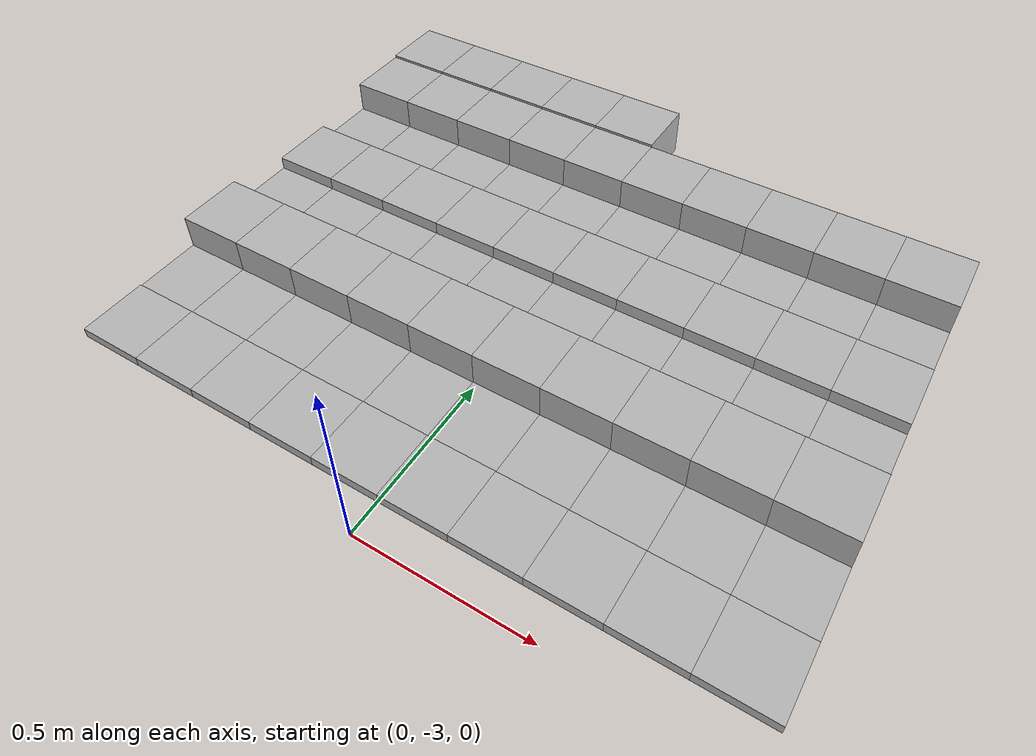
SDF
<sdf version="1.6">
 <model name="Terrain">
  <static>true</static>
  <link name="box_7_0">
   <pose>-0.9 -1.4 0.0735431244106 0 0 0</pose>
   <inertial>
    <mass>1.0</mass>
    <inertia><ixx>0.0</ixx><ixy>0.0</ixy><ixz>0.0</ixz><iyy>0.0</iyy><iyz>0.0</iyz><izz>0.0</izz></inertia>
   </inertial>
   <collision name="collision"><geometry><box><size>0.2 0.2 0.147086248821</size></box></geometry></collision>
   <visual name="visual"><geometry><box><size>0.2 0.2 0.147086248821</size></box></geometry></visual>
  </link>
  <link name="box_7_1">
   <pose>-0.7 -1.4 0.0735431244106 0 0 0</pose>
   <inertial>
    <mass>1.0</mass>
    <inertia><ixx>0.0</ixx><ixy>0.0</ixy><ixz>0.0</ixz><iyy>0.0</iyy><iyz>0.0</iyz><izz>0.0</izz></inertia>
   </inertial>
   <collision name="collision"><geometry><box><size>0.2 0.2 0.147086248821</size></box></geometry></collision>
   <visual name="visual"><geometry><box><size>0.2 0.2 0.147086248821</size></box></geometry></visual>
  </link>
  <link name="box_7_2">
   <pose>-0.5 -1.4 0.0735431244106 0 0 0</pose>
   <inertial>
    <mass>1.0</mass>
    <inertia><ixx>0.0</ixx><ixy>0.0</ixy><ixz>0.0</ixz><iyy>0.0</iyy><iyz>0.0</iyz><izz>0.0</izz></inertia>
   </inertial>
   <collision name="collision"><geometry><box><size>0.2 0.2 0.147086248821</size></box></geometry></collision>
   <visual name="visual"><geometry><box><size>0.2 0.2 0.147086248821</size></box></geometry></visual>
  </link>
  <link name="box_7_3">
   <pose>-0.3 -1.4 0.0735431244106 0 0 0</pose>
   <inertial>
    <mass>1.0</mass>
    <inertia><ixx>0.0</ixx><ixy>0.0</ixy><ixz>0.0</ixz><iyy>0.0</iyy><iyz>0.0</iyz><izz>0.0</izz></inertia>
   </inertial>
   <collision name="collision"><geometry><box><size>0.2 0.2 0.147086248821</size></box></geometry></collision>
   <visual name="visual"><geometry><box><size>0.2 0.2 0.147086248821</size></box></geometry></visual>
  </link>
  <link name="box_7_4">
   <pose>-0.1 -1.4 0.0735431244106 0 0 0</pose>
   <inertial>
    <mass>1.0</mass>
    <inertia><ixx>0.0</ixx><ixy>0.0</ixy><ixz>0.0</ixz><iyy>0.0</iyy><iyz>0.0</iyz><izz>0.0</izz></inertia>
   </inertial>
   <collision name="collision"><geometry><box><size>0.2 0.2 0.147086248821</size></box></geometry></collision>
   <visual name="visual"><geometry><box><size>0.2 0.2 0.147086248821</size></box></geometry></visual>
  </link>
  <link name="box_8_0">
   <pose>-0.9 -1.6 0.0698554975141 0 0 0</pose>
   <inertial>
    <mass>1.0</mass>
    <inertia><ixx>0.0</ixx><ixy>0.0</ixy><ixz>0.0</ixz><iyy>0.0</iyy><iyz>0.0</iyz><izz>0.0</izz></inertia>
   </inertial>
   <collision name="collision"><geometry><box><size>0.2 0.2 0.139710995028</size></box></geometry></collision>
   <visual name="visual"><geometry><box><size>0.2 0.2 0.139710995028</size></box></geometry></visual>
  </link>
  <link name="box_8_1">
   <pose>-0.7 -1.6 0.0698554975141 0 0 0</pose>
   <inertial>
    <mass>1.0</mass>
    <inertia><ixx>0.0</ixx><ixy>0.0</ixy><ixz>0.0</ixz><iyy>0.0</iyy><iyz>0.0</iyz><izz>0.0</izz></inertia>
   </inertial>
   <collision name="collision"><geometry><box><size>0.2 0.2 0.139710995028</size></box></geometry></collision>
   <visual name="visual"><geometry><box><size>0.2 0.2 0.139710995028</size></box></geometry></visual>
  </link>
  <link name="box_8_2">
   <pose>-0.5 -1.6 0.0698554975141 0 0 0</pose>
   <inertial>
    <mass>1.0</mass>
    <inertia><ixx>0.0</ixx><ixy>0.0</ixy><ixz>0.0</ixz><iyy>0.0</iyy><iyz>0.0</iyz><izz>0.0</izz></inertia>
   </inertial>
   <collision name="collision"><geometry><box><size>0.2 0.2 0.139710995028</size></box></geometry></collision>
   <visual name="visual"><geometry><box><size>0.2 0.2 0.139710995028</size></box></geometry></visual>
  </link>
  <link name="box_8_3">
   <pose>-0.3 -1.6 0.0698554975141 0 0 0</pose>
   <inertial>
    <mass>1.0</mass>
    <inertia><ixx>0.0</ixx><ixy>0.0</ixy><ixz>0.0</ixz><iyy>0.0</iyy><iyz>0.0</iyz><izz>0.0</izz></inertia>
   </inertial>
   <collision name="collision"><geometry><box><size>0.2 0.2 0.139710995028</size></box></geometry></collision>
   <visual name="visual"><geometry><box><size>0.2 0.2 0.139710995028</size></box></geometry></visual>
  </link>
  <link name="box_8_4">
   <pose>-0.1 -1.6 0.0698554975141 0 0 0</pose>
   <inertial>
    <mass>1.0</mass>
    <inertia><ixx>0.0</ixx><ixy>0.0</ixy><ixz>0.0</ixz><iyy>0.0</iyy><iyz>0.0</iyz><izz>0.0</izz></inertia>
   </inertial>
   <collision name="collision"><geometry><box><size>0.2 0.2 0.139710995028</size></box></geometry></collision>
   <visual name="visual"><geometry><box><size>0.2 0.2 0.139710995028</size></box></geometry></visual>
  </link>
  <link name="box_8_5">
   <pose>0.1 -1.6 0.0698554975141 0 0 0</pose>
   <inertial>
    <mass>1.0</mass>
    <inertia><ixx>0.0</ixx><ixy>0.0</ixy><ixz>0.0</ixz><iyy>0.0</iyy><iyz>0.0</iyz><izz>0.0</izz></inertia>
   </inertial>
   <collision name="collision"><geometry><box><size>0.2 0.2 0.139710995028</size></box></geometry></collision>
   <visual name="visual"><geometry><box><size>0.2 0.2 0.139710995028</size></box></geometry></visual>
  </link>
  <link name="box_8_6">
   <pose>0.3 -1.6 0.0698554975141 0 0 0</pose>
   <inertial>
    <mass>1.0</mass>
    <inertia><ixx>0.0</ixx><ixy>0.0</ixy><ixz>0.0</ixz><iyy>0.0</iyy><iyz>0.0</iyz><izz>0.0</izz></inertia>
   </inertial>
   <collision name="collision"><geometry><box><size>0.2 0.2 0.139710995028</size></box></geometry></collision>
   <visual name="visual"><geometry><box><size>0.2 0.2 0.139710995028</size></box></geometry></visual>
  </link>
  <link name="box_8_7">
   <pose>0.5 -1.6 0.0698554975141 0 0 0</pose>
   <inertial>
    <mass>1.0</mass>
    <inertia><ixx>0.0</ixx><ixy>0.0</ixy><ixz>0.0</ixz><iyy>0.0</iyy><iyz>0.0</iyz><izz>0.0</izz></inertia>
   </inertial>
   <collision name="collision"><geometry><box><size>0.2 0.2 0.139710995028</size></box></geometry></collision>
   <visual name="visual"><geometry><box><size>0.2 0.2 0.139710995028</size></box></geometry></visual>
  </link>
  <link name="box_8_8">
   <pose>0.7 -1.6 0.0698554975141 0 0 0</pose>
   <inertial>
    <mass>1.0</mass>
    <inertia><ixx>0.0</ixx><ixy>0.0</ixy><ixz>0.0</ixz><iyy>0.0</iyy><iyz>0.0</iyz><izz>0.0</izz></inertia>
   </inertial>
   <collision name="collision"><geometry><box><size>0.2 0.2 0.139710995028</size></box></geometry></collision>
   <visual name="visual"><geometry><box><size>0.2 0.2 0.139710995028</size></box></geometry></visual>
  </link>
  <link name="box_8_9">
   <pose>0.9 -1.6 0.0698554975141 0 0 0</pose>
   <inertial>
    <mass>1.0</mass>
    <inertia><ixx>0.0</ixx><ixy>0.0</ixy><ixz>0.0</ixz><iyy>0.0</iyy><iyz>0.0</iyz><izz>0.0</izz></inertia>
   </inertial>
   <collision name="collision"><geometry><box><size>0.2 0.2 0.139710995028</size></box></geometry></collision>
   <visual name="visual"><geometry><box><size>0.2 0.2 0.139710995028</size></box></geometry></visual>
  </link>
  <link name="box_9_0">
   <pose>-0.9 -1.8 0.020531923753 0 0 0</pose>
   <inertial>
    <mass>1.0</mass>
    <inertia><ixx>0.0</ixx><ixy>0.0</ixy><ixz>0.0</ixz><iyy>0.0</iyy><iyz>0.0</iyz><izz>0.0</izz></inertia>
   </inertial>
   <collision name="collision"><geometry><box><size>0.2 0.2 0.0410638475061</size></box></geometry></collision>
   <visual name="visual"><geometry><box><size>0.2 0.2 0.0410638475061</size></box></geometry></visual>
  </link>
  <link name="box_9_1">
   <pose>-0.7 -1.8 0.020531923753 0 0 0</pose>
   <inertial>
    <mass>1.0</mass>
    <inertia><ixx>0.0</ixx><ixy>0.0</ixy><ixz>0.0</ixz><iyy>0.0</iyy><iyz>0.0</iyz><izz>0.0</izz></inertia>
   </inertial>
   <collision name="collision"><geometry><box><size>0.2 0.2 0.0410638475061</size></box></geometry></collision>
   <visual name="visual"><geometry><box><size>0.2 0.2 0.0410638475061</size></box></geometry></visual>
  </link>
  <link name="box_9_2">
   <pose>-0.5 -1.8 0.020531923753 0 0 0</pose>
   <inertial>
    <mass>1.0</mass>
    <inertia><ixx>0.0</ixx><ixy>0.0</ixy><ixz>0.0</ixz><iyy>0.0</iyy><iyz>0.0</iyz><izz>0.0</izz></inertia>
   </inertial>
   <collision name="collision"><geometry><box><size>0.2 0.2 0.0410638475061</size></box></geometry></collision>
   <visual name="visual"><geometry><box><size>0.2 0.2 0.0410638475061</size></box></geometry></visual>
  </link>
  <link name="box_9_3">
   <pose>-0.3 -1.8 0.020531923753 0 0 0</pose>
   <inertial>
    <mass>1.0</mass>
    <inertia><ixx>0.0</ixx><ixy>0.0</ixy><ixz>0.0</ixz><iyy>0.0</iyy><iyz>0.0</iyz><izz>0.0</izz></inertia>
   </inertial>
   <collision name="collision"><geometry><box><size>0.2 0.2 0.0410638475061</size></box></geometry></collision>
   <visual name="visual"><geometry><box><size>0.2 0.2 0.0410638475061</size></box></geometry></visual>
  </link>
  <link name="box_9_4">
   <pose>-0.1 -1.8 0.020531923753 0 0 0</pose>
   <inertial>
    <mass>1.0</mass>
    <inertia><ixx>0.0</ixx><ixy>0.0</ixy><ixz>0.0</ixz><iyy>0.0</iyy><iyz>0.0</iyz><izz>0.0</izz></inertia>
   </inertial>
   <collision name="collision"><geometry><box><size>0.2 0.2 0.0410638475061</size></box></geometry></collision>
   <visual name="visual"><geometry><box><size>0.2 0.2 0.0410638475061</size></box></geometry></visual>
  </link>
  <link name="box_9_5">
   <pose>0.1 -1.8 0.020531923753 0 0 0</pose>
   <inertial>
    <mass>1.0</mass>
    <inertia><ixx>0.0</ixx><ixy>0.0</ixy><ixz>0.0</ixz><iyy>0.0</iyy><iyz>0.0</iyz><izz>0.0</izz></inertia>
   </inertial>
   <collision name="collision"><geometry><box><size>0.2 0.2 0.0410638475061</size></box></geometry></collision>
   <visual name="visual"><geometry><box><size>0.2 0.2 0.0410638475061</size></box></geometry></visual>
  </link>
  <link name="box_9_6">
   <pose>0.3 -1.8 0.020531923753 0 0 0</pose>
   <inertial>
    <mass>1.0</mass>
    <inertia><ixx>0.0</ixx><ixy>0.0</ixy><ixz>0.0</ixz><iyy>0.0</iyy><iyz>0.0</iyz><izz>0.0</izz></inertia>
   </inertial>
   <collision name="collision"><geometry><box><size>0.2 0.2 0.0410638475061</size></box></geometry></collision>
   <visual name="visual"><geometry><box><size>0.2 0.2 0.0410638475061</size></box></geometry></visual>
  </link>
  <link name="box_9_7">
   <pose>0.5 -1.8 0.020531923753 0 0 0</pose>
   <inertial>
    <mass>1.0</mass>
    <inertia><ixx>0.0</ixx><ixy>0.0</ixy><ixz>0.0</ixz><iyy>0.0</iyy><iyz>0.0</iyz><izz>0.0</izz></inertia>
   </inertial>
   <collision name="collision"><geometry><box><size>0.2 0.2 0.0410638475061</size></box></geometry></collision>
   <visual name="visual"><geometry><box><size>0.2 0.2 0.0410638475061</size></box></geometry></visual>
  </link>
  <link name="box_9_8">
   <pose>0.7 -1.8 0.020531923753 0 0 0</pose>
   <inertial>
    <mass>1.0</mass>
    <inertia><ixx>0.0</ixx><ixy>0.0</ixy><ixz>0.0</ixz><iyy>0.0</iyy><iyz>0.0</iyz><izz>0.0</izz></inertia>
   </inertial>
   <collision name="collision"><geometry><box><size>0.2 0.2 0.0410638475061</size></box></geometry></collision>
   <visual name="visual"><geometry><box><size>0.2 0.2 0.0410638475061</size></box></geometry></visual>
  </link>
  <link name="box_9_9">
   <pose>0.9 -1.8 0.020531923753 0 0 0</pose>
   <inertial>
    <mass>1.0</mass>
    <inertia><ixx>0.0</ixx><ixy>0.0</ixy><ixz>0.0</ixz><iyy>0.0</iyy><iyz>0.0</iyz><izz>0.0</izz></inertia>
   </inertial>
   <collision name="collision"><geometry><box><size>0.2 0.2 0.0410638475061</size></box></geometry></collision>
   <visual name="visual"><geometry><box><size>0.2 0.2 0.0410638475061</size></box></geometry></visual>
  </link>
  <link name="box_10_0">
   <pose>-0.9 -2.0 0.0443168235276 0 0 0</pose>
   <inertial>
    <mass>1.0</mass>
    <inertia><ixx>0.0</ixx><ixy>0.0</ixy><ixz>0.0</ixz><iyy>0.0</iyy><iyz>0.0</iyz><izz>0.0</izz></inertia>
   </inertial>
   <collision name="collision"><geometry><box><size>0.2 0.2 0.0886336470552</size></box></geometry></collision>
   <visual name="visual"><geometry><box><size>0.2 0.2 0.0886336470552</size></box></geometry></visual>
  </link>
  <link name="box_10_1">
   <pose>-0.7 -2.0 0.0443168235276 0 0 0</pose>
   <inertial>
    <mass>1.0</mass>
    <inertia><ixx>0.0</ixx><ixy>0.0</ixy><ixz>0.0</ixz><iyy>0.0</iyy><iyz>0.0</iyz><izz>0.0</izz></inertia>
   </inertial>
   <collision name="collision"><geometry><box><size>0.2 0.2 0.0886336470552</size></box></geometry></collision>
   <visual name="visual"><geometry><box><size>0.2 0.2 0.0886336470552</size></box></geometry></visual>
  </link>
  <link name="box_10_2">
   <pose>-0.5 -2.0 0.0443168235276 0 0 0</pose>
   <inertial>
    <mass>1.0</mass>
    <inertia><ixx>0.0</ixx><ixy>0.0</ixy><ixz>0.0</ixz><iyy>0.0</iyy><iyz>0.0</iyz><izz>0.0</izz></inertia>
   </inertial>
   <collision name="collision"><geometry><box><size>0.2 0.2 0.0886336470552</size></box></geometry></collision>
   <visual name="visual"><geometry><box><size>0.2 0.2 0.0886336470552</size></box></geometry></visual>
  </link>
  <link name="box_10_3">
   <pose>-0.3 -2.0 0.0443168235276 0 0 0</pose>
   <inertial>
    <mass>1.0</mass>
    <inertia><ixx>0.0</ixx><ixy>0.0</ixy><ixz>0.0</ixz><iyy>0.0</iyy><iyz>0.0</iyz><izz>0.0</izz></inertia>
   </inertial>
   <collision name="collision"><geometry><box><size>0.2 0.2 0.0886336470552</size></box></geometry></collision>
   <visual name="visual"><geometry><box><size>0.2 0.2 0.0886336470552</size></box></geometry></visual>
  </link>
  <link name="box_10_4">
   <pose>-0.1 -2.0 0.0443168235276 0 0 0</pose>
   <inertial>
    <mass>1.0</mass>
    <inertia><ixx>0.0</ixx><ixy>0.0</ixy><ixz>0.0</ixz><iyy>0.0</iyy><iyz>0.0</iyz><izz>0.0</izz></inertia>
   </inertial>
   <collision name="collision"><geometry><box><size>0.2 0.2 0.0886336470552</size></box></geometry></collision>
   <visual name="visual"><geometry><box><size>0.2 0.2 0.0886336470552</size></box></geometry></visual>
  </link>
  <link name="box_10_5">
   <pose>0.1 -2.0 0.0443168235276 0 0 0</pose>
   <inertial>
    <mass>1.0</mass>
    <inertia><ixx>0.0</ixx><ixy>0.0</ixy><ixz>0.0</ixz><iyy>0.0</iyy><iyz>0.0</iyz><izz>0.0</izz></inertia>
   </inertial>
   <collision name="collision"><geometry><box><size>0.2 0.2 0.0886336470552</size></box></geometry></collision>
   <visual name="visual"><geometry><box><size>0.2 0.2 0.0886336470552</size></box></geometry></visual>
  </link>
  <link name="box_10_6">
   <pose>0.3 -2.0 0.0443168235276 0 0 0</pose>
   <inertial>
    <mass>1.0</mass>
    <inertia><ixx>0.0</ixx><ixy>0.0</ixy><ixz>0.0</ixz><iyy>0.0</iyy><iyz>0.0</iyz><izz>0.0</izz></inertia>
   </inertial>
   <collision name="collision"><geometry><box><size>0.2 0.2 0.0886336470552</size></box></geometry></collision>
   <visual name="visual"><geometry><box><size>0.2 0.2 0.0886336470552</size></box></geometry></visual>
  </link>
  <link name="box_10_7">
   <pose>0.5 -2.0 0.0443168235276 0 0 0</pose>
   <inertial>
    <mass>1.0</mass>
    <inertia><ixx>0.0</ixx><ixy>0.0</ixy><ixz>0.0</ixz><iyy>0.0</iyy><iyz>0.0</iyz><izz>0.0</izz></inertia>
   </inertial>
   <collision name="collision"><geometry><box><size>0.2 0.2 0.0886336470552</size></box></geometry></collision>
   <visual name="visual"><geometry><box><size>0.2 0.2 0.0886336470552</size></box></geometry></visual>
  </link>
  <link name="box_10_8">
   <pose>0.7 -2.0 0.0443168235276 0 0 0</pose>
   <inertial>
    <mass>1.0</mass>
    <inertia><ixx>0.0</ixx><ixy>0.0</ixy><ixz>0.0</ixz><iyy>0.0</iyy><iyz>0.0</iyz><izz>0.0</izz></inertia>
   </inertial>
   <collision name="collision"><geometry><box><size>0.2 0.2 0.0886336470552</size></box></geometry></collision>
   <visual name="visual"><geometry><box><size>0.2 0.2 0.0886336470552</size></box></geometry></visual>
  </link>
  <link name="box_10_9">
   <pose>0.9 -2.0 0.0443168235276 0 0 0</pose>
   <inertial>
    <mass>1.0</mass>
    <inertia><ixx>0.0</ixx><ixy>0.0</ixy><ixz>0.0</ixz><iyy>0.0</iyy><iyz>0.0</iyz><izz>0.0</izz></inertia>
   </inertial>
   <collision name="collision"><geometry><box><size>0.2 0.2 0.0886336470552</size></box></geometry></collision>
   <visual name="visual"><geometry><box><size>0.2 0.2 0.0886336470552</size></box></geometry></visual>
  </link>
  <link name="box_11_0">
   <pose>-0.9 -2.2 0.0244615695562 0 0 0</pose>
   <inertial>
    <mass>1.0</mass>
    <inertia><ixx>0.0</ixx><ixy>0.0</ixy><ixz>0.0</ixz><iyy>0.0</iyy><iyz>0.0</iyz><izz>0.0</izz></inertia>
   </inertial>
   <collision name="collision"><geometry><box><size>0.2 0.2 0.0489231391124</size></box></geometry></collision>
   <visual name="visual"><geometry><box><size>0.2 0.2 0.0489231391124</size></box></geometry></visual>
  </link>
  <link name="box_11_1">
   <pose>-0.7 -2.2 0.0244615695562 0 0 0</pose>
   <inertial>
    <mass>1.0</mass>
    <inertia><ixx>0.0</ixx><ixy>0.0</ixy><ixz>0.0</ixz><iyy>0.0</iyy><iyz>0.0</iyz><izz>0.0</izz></inertia>
   </inertial>
   <collision name="collision"><geometry><box><size>0.2 0.2 0.0489231391124</size></box></geometry></collision>
   <visual name="visual"><geometry><box><size>0.2 0.2 0.0489231391124</size></box></geometry></visual>
  </link>
  <link name="box_11_2">
   <pose>-0.5 -2.2 0.0244615695562 0 0 0</pose>
   <inertial>
    <mass>1.0</mass>
    <inertia><ixx>0.0</ixx><ixy>0.0</ixy><ixz>0.0</ixz><iyy>0.0</iyy><iyz>0.0</iyz><izz>0.0</izz></inertia>
   </inertial>
   <collision name="collision"><geometry><box><size>0.2 0.2 0.0489231391124</size></box></geometry></collision>
   <visual name="visual"><geometry><box><size>0.2 0.2 0.0489231391124</size></box></geometry></visual>
  </link>
  <link name="box_11_3">
   <pose>-0.3 -2.2 0.0244615695562 0 0 0</pose>
   <inertial>
    <mass>1.0</mass>
    <inertia><ixx>0.0</ixx><ixy>0.0</ixy><ixz>0.0</ixz><iyy>0.0</iyy><iyz>0.0</iyz><izz>0.0</izz></inertia>
   </inertial>
   <collision name="collision"><geometry><box><size>0.2 0.2 0.0489231391124</size></box></geometry></collision>
   <visual name="visual"><geometry><box><size>0.2 0.2 0.0489231391124</size></box></geometry></visual>
  </link>
  <link name="box_11_4">
   <pose>-0.1 -2.2 0.0244615695562 0 0 0</pose>
   <inertial>
    <mass>1.0</mass>
    <inertia><ixx>0.0</ixx><ixy>0.0</ixy><ixz>0.0</ixz><iyy>0.0</iyy><iyz>0.0</iyz><izz>0.0</izz></inertia>
   </inertial>
   <collision name="collision"><geometry><box><size>0.2 0.2 0.0489231391124</size></box></geometry></collision>
   <visual name="visual"><geometry><box><size>0.2 0.2 0.0489231391124</size></box></geometry></visual>
  </link>
  <link name="box_11_5">
   <pose>0.1 -2.2 0.0244615695562 0 0 0</pose>
   <inertial>
    <mass>1.0</mass>
    <inertia><ixx>0.0</ixx><ixy>0.0</ixy><ixz>0.0</ixz><iyy>0.0</iyy><iyz>0.0</iyz><izz>0.0</izz></inertia>
   </inertial>
   <collision name="collision"><geometry><box><size>0.2 0.2 0.0489231391124</size></box></geometry></collision>
   <visual name="visual"><geometry><box><size>0.2 0.2 0.0489231391124</size></box></geometry></visual>
  </link>
  <link name="box_11_6">
   <pose>0.3 -2.2 0.0244615695562 0 0 0</pose>
   <inertial>
    <mass>1.0</mass>
    <inertia><ixx>0.0</ixx><ixy>0.0</ixy><ixz>0.0</ixz><iyy>0.0</iyy><iyz>0.0</iyz><izz>0.0</izz></inertia>
   </inertial>
   <collision name="collision"><geometry><box><size>0.2 0.2 0.0489231391124</size></box></geometry></collision>
   <visual name="visual"><geometry><box><size>0.2 0.2 0.0489231391124</size></box></geometry></visual>
  </link>
  <link name="box_11_7">
   <pose>0.5 -2.2 0.0244615695562 0 0 0</pose>
   <inertial>
    <mass>1.0</mass>
    <inertia><ixx>0.0</ixx><ixy>0.0</ixy><ixz>0.0</ixz><iyy>0.0</iyy><iyz>0.0</iyz><izz>0.0</izz></inertia>
   </inertial>
   <collision name="collision"><geometry><box><size>0.2 0.2 0.0489231391124</size></box></geometry></collision>
   <visual name="visual"><geometry><box><size>0.2 0.2 0.0489231391124</size></box></geometry></visual>
  </link>
  <link name="box_11_8">
   <pose>0.7 -2.2 0.0244615695562 0 0 0</pose>
   <inertial>
    <mass>1.0</mass>
    <inertia><ixx>0.0</ixx><ixy>0.0</ixy><ixz>0.0</ixz><iyy>0.0</iyy><iyz>0.0</iyz><izz>0.0</izz></inertia>
   </inertial>
   <collision name="collision"><geometry><box><size>0.2 0.2 0.0489231391124</size></box></geometry></collision>
   <visual name="visual"><geometry><box><size>0.2 0.2 0.0489231391124</size></box></geometry></visual>
  </link>
  <link name="box_11_9">
   <pose>0.9 -2.2 0.0244615695562 0 0 0</pose>
   <inertial>
    <mass>1.0</mass>
    <inertia><ixx>0.0</ixx><ixy>0.0</ixy><ixz>0.0</ixz><iyy>0.0</iyy><iyz>0.0</iyz><izz>0.0</izz></inertia>
   </inertial>
   <collision name="collision"><geometry><box><size>0.2 0.2 0.0489231391124</size></box></geometry></collision>
   <visual name="visual"><geometry><box><size>0.2 0.2 0.0489231391124</size></box></geometry></visual>
  </link>
  <link name="box_12_0">
   <pose>-0.9 -2.4 0.0649148969992 0 0 0</pose>
   <inertial>
    <mass>1.0</mass>
    <inertia><ixx>0.0</ixx><ixy>0.0</ixy><ixz>0.0</ixz><iyy>0.0</iyy><iyz>0.0</iyz><izz>0.0</izz></inertia>
   </inertial>
   <collision name="collision"><geometry><box><size>0.2 0.2 0.129829793998</size></box></geometry></collision>
   <visual name="visual"><geometry><box><size>0.2 0.2 0.129829793998</size></box></geometry></visual>
  </link>
  <link name="box_12_1">
   <pose>-0.7 -2.4 0.0649148969992 0 0 0</pose>
   <inertial>
    <mass>1.0</mass>
    <inertia><ixx>0.0</ixx><ixy>0.0</ixy><ixz>0.0</ixz><iyy>0.0</iyy><iyz>0.0</iyz><izz>0.0</izz></inertia>
   </inertial>
   <collision name="collision"><geometry><box><size>0.2 0.2 0.129829793998</size></box></geometry></collision>
   <visual name="visual"><geometry><box><size>0.2 0.2 0.129829793998</size></box></geometry></visual>
  </link>
  <link name="box_12_2">
   <pose>-0.5 -2.4 0.0649148969992 0 0 0</pose>
   <inertial>
    <mass>1.0</mass>
    <inertia><ixx>0.0</ixx><ixy>0.0</ixy><ixz>0.0</ixz><iyy>0.0</iyy><iyz>0.0</iyz><izz>0.0</izz></inertia>
   </inertial>
   <collision name="collision"><geometry><box><size>0.2 0.2 0.129829793998</size></box></geometry></collision>
   <visual name="visual"><geometry><box><size>0.2 0.2 0.129829793998</size></box></geometry></visual>
  </link>
  <link name="box_12_3">
   <pose>-0.3 -2.4 0.0649148969992 0 0 0</pose>
   <inertial>
    <mass>1.0</mass>
    <inertia><ixx>0.0</ixx><ixy>0.0</ixy><ixz>0.0</ixz><iyy>0.0</iyy><iyz>0.0</iyz><izz>0.0</izz></inertia>
   </inertial>
   <collision name="collision"><geometry><box><size>0.2 0.2 0.129829793998</size></box></geometry></collision>
   <visual name="visual"><geometry><box><size>0.2 0.2 0.129829793998</size></box></geometry></visual>
  </link>
  <link name="box_12_4">
   <pose>-0.1 -2.4 0.0649148969992 0 0 0</pose>
   <inertial>
    <mass>1.0</mass>
    <inertia><ixx>0.0</ixx><ixy>0.0</ixy><ixz>0.0</ixz><iyy>0.0</iyy><iyz>0.0</iyz><izz>0.0</izz></inertia>
   </inertial>
   <collision name="collision"><geometry><box><size>0.2 0.2 0.129829793998</size></box></geometry></collision>
   <visual name="visual"><geometry><box><size>0.2 0.2 0.129829793998</size></box></geometry></visual>
  </link>
  <link name="box_12_5">
   <pose>0.1 -2.4 0.0649148969992 0 0 0</pose>
   <inertial>
    <mass>1.0</mass>
    <inertia><ixx>0.0</ixx><ixy>0.0</ixy><ixz>0.0</ixz><iyy>0.0</iyy><iyz>0.0</iyz><izz>0.0</izz></inertia>
   </inertial>
   <collision name="collision"><geometry><box><size>0.2 0.2 0.129829793998</size></box></geometry></collision>
   <visual name="visual"><geometry><box><size>0.2 0.2 0.129829793998</size></box></geometry></visual>
  </link>
  <link name="box_12_6">
   <pose>0.3 -2.4 0.0649148969992 0 0 0</pose>
   <inertial>
    <mass>1.0</mass>
    <inertia><ixx>0.0</ixx><ixy>0.0</ixy><ixz>0.0</ixz><iyy>0.0</iyy><iyz>0.0</iyz><izz>0.0</izz></inertia>
   </inertial>
   <collision name="collision"><geometry><box><size>0.2 0.2 0.129829793998</size></box></geometry></collision>
   <visual name="visual"><geometry><box><size>0.2 0.2 0.129829793998</size></box></geometry></visual>
  </link>
  <link name="box_12_7">
   <pose>0.5 -2.4 0.0649148969992 0 0 0</pose>
   <inertial>
    <mass>1.0</mass>
    <inertia><ixx>0.0</ixx><ixy>0.0</ixy><ixz>0.0</ixz><iyy>0.0</iyy><iyz>0.0</iyz><izz>0.0</izz></inertia>
   </inertial>
   <collision name="collision"><geometry><box><size>0.2 0.2 0.129829793998</size></box></geometry></collision>
   <visual name="visual"><geometry><box><size>0.2 0.2 0.129829793998</size></box></geometry></visual>
  </link>
  <link name="box_12_8">
   <pose>0.7 -2.4 0.0649148969992 0 0 0</pose>
   <inertial>
    <mass>1.0</mass>
    <inertia><ixx>0.0</ixx><ixy>0.0</ixy><ixz>0.0</ixz><iyy>0.0</iyy><iyz>0.0</iyz><izz>0.0</izz></inertia>
   </inertial>
   <collision name="collision"><geometry><box><size>0.2 0.2 0.129829793998</size></box></geometry></collision>
   <visual name="visual"><geometry><box><size>0.2 0.2 0.129829793998</size></box></geometry></visual>
  </link>
  <link name="box_12_9">
   <pose>0.9 -2.4 0.0649148969992 0 0 0</pose>
   <inertial>
    <mass>1.0</mass>
    <inertia><ixx>0.0</ixx><ixy>0.0</ixy><ixz>0.0</ixz><iyy>0.0</iyy><iyz>0.0</iyz><izz>0.0</izz></inertia>
   </inertial>
   <collision name="collision"><geometry><box><size>0.2 0.2 0.129829793998</size></box></geometry></collision>
   <visual name="visual"><geometry><box><size>0.2 0.2 0.129829793998</size></box></geometry></visual>
  </link>
  <link name="box_13_0">
   <pose>-0.9 -2.6 0.0131089451375 0 0 0</pose>
   <inertial>
    <mass>1.0</mass>
    <inertia><ixx>0.0</ixx><ixy>0.0</ixy><ixz>0.0</ixz><iyy>0.0</iyy><iyz>0.0</iyz><izz>0.0</izz></inertia>
   </inertial>
   <collision name="collision"><geometry><box><size>0.2 0.2 0.0262178902749</size></box></geometry></collision>
   <visual name="visual"><geometry><box><size>0.2 0.2 0.0262178902749</size></box></geometry></visual>
  </link>
  <link name="box_13_1">
   <pose>-0.7 -2.6 0.0131089451375 0 0 0</pose>
   <inertial>
    <mass>1.0</mass>
    <inertia><ixx>0.0</ixx><ixy>0.0</ixy><ixz>0.0</ixz><iyy>0.0</iyy><iyz>0.0</iyz><izz>0.0</izz></inertia>
   </inertial>
   <collision name="collision"><geometry><box><size>0.2 0.2 0.0262178902749</size></box></geometry></collision>
   <visual name="visual"><geometry><box><size>0.2 0.2 0.0262178902749</size></box></geometry></visual>
  </link>
  <link name="box_13_2">
   <pose>-0.5 -2.6 0.0131089451375 0 0 0</pose>
   <inertial>
    <mass>1.0</mass>
    <inertia><ixx>0.0</ixx><ixy>0.0</ixy><ixz>0.0</ixz><iyy>0.0</iyy><iyz>0.0</iyz><izz>0.0</izz></inertia>
   </inertial>
   <collision name="collision"><geometry><box><size>0.2 0.2 0.0262178902749</size></box></geometry></collision>
   <visual name="visual"><geometry><box><size>0.2 0.2 0.0262178902749</size></box></geometry></visual>
  </link>
  <link name="box_13_3">
   <pose>-0.3 -2.6 0.0131089451375 0 0 0</pose>
   <inertial>
    <mass>1.0</mass>
    <inertia><ixx>0.0</ixx><ixy>0.0</ixy><ixz>0.0</ixz><iyy>0.0</iyy><iyz>0.0</iyz><izz>0.0</izz></inertia>
   </inertial>
   <collision name="collision"><geometry><box><size>0.2 0.2 0.0262178902749</size></box></geometry></collision>
   <visual name="visual"><geometry><box><size>0.2 0.2 0.0262178902749</size></box></geometry></visual>
  </link>
  <link name="box_13_4">
   <pose>-0.1 -2.6 0.0131089451375 0 0 0</pose>
   <inertial>
    <mass>1.0</mass>
    <inertia><ixx>0.0</ixx><ixy>0.0</ixy><ixz>0.0</ixz><iyy>0.0</iyy><iyz>0.0</iyz><izz>0.0</izz></inertia>
   </inertial>
   <collision name="collision"><geometry><box><size>0.2 0.2 0.0262178902749</size></box></geometry></collision>
   <visual name="visual"><geometry><box><size>0.2 0.2 0.0262178902749</size></box></geometry></visual>
  </link>
  <link name="box_13_5">
   <pose>0.1 -2.6 0.0131089451375 0 0 0</pose>
   <inertial>
    <mass>1.0</mass>
    <inertia><ixx>0.0</ixx><ixy>0.0</ixy><ixz>0.0</ixz><iyy>0.0</iyy><iyz>0.0</iyz><izz>0.0</izz></inertia>
   </inertial>
   <collision name="collision"><geometry><box><size>0.2 0.2 0.0262178902749</size></box></geometry></collision>
   <visual name="visual"><geometry><box><size>0.2 0.2 0.0262178902749</size></box></geometry></visual>
  </link>
  <link name="box_13_6">
   <pose>0.3 -2.6 0.0131089451375 0 0 0</pose>
   <inertial>
    <mass>1.0</mass>
    <inertia><ixx>0.0</ixx><ixy>0.0</ixy><ixz>0.0</ixz><iyy>0.0</iyy><iyz>0.0</iyz><izz>0.0</izz></inertia>
   </inertial>
   <collision name="collision"><geometry><box><size>0.2 0.2 0.0262178902749</size></box></geometry></collision>
   <visual name="visual"><geometry><box><size>0.2 0.2 0.0262178902749</size></box></geometry></visual>
  </link>
  <link name="box_13_7">
   <pose>0.5 -2.6 0.0131089451375 0 0 0</pose>
   <inertial>
    <mass>1.0</mass>
    <inertia><ixx>0.0</ixx><ixy>0.0</ixy><ixz>0.0</ixz><iyy>0.0</iyy><iyz>0.0</iyz><izz>0.0</izz></inertia>
   </inertial>
   <collision name="collision"><geometry><box><size>0.2 0.2 0.0262178902749</size></box></geometry></collision>
   <visual name="visual"><geometry><box><size>0.2 0.2 0.0262178902749</size></box></geometry></visual>
  </link>
  <link name="box_13_8">
   <pose>0.7 -2.6 0.0131089451375 0 0 0</pose>
   <inertial>
    <mass>1.0</mass>
    <inertia><ixx>0.0</ixx><ixy>0.0</ixy><ixz>0.0</ixz><iyy>0.0</iyy><iyz>0.0</iyz><izz>0.0</izz></inertia>
   </inertial>
   <collision name="collision"><geometry><box><size>0.2 0.2 0.0262178902749</size></box></geometry></collision>
   <visual name="visual"><geometry><box><size>0.2 0.2 0.0262178902749</size></box></geometry></visual>
  </link>
  <link name="box_13_9">
   <pose>0.9 -2.6 0.0131089451375 0 0 0</pose>
   <inertial>
    <mass>1.0</mass>
    <inertia><ixx>0.0</ixx><ixy>0.0</ixy><ixz>0.0</ixz><iyy>0.0</iyy><iyz>0.0</iyz><izz>0.0</izz></inertia>
   </inertial>
   <collision name="collision"><geometry><box><size>0.2 0.2 0.0262178902749</size></box></geometry></collision>
   <visual name="visual"><geometry><box><size>0.2 0.2 0.0262178902749</size></box></geometry></visual>
  </link>
  <link name="box_14_0">
   <pose>-0.9 -2.8 0.014911884943 0 0 0</pose>
   <inertial>
    <mass>1.0</mass>
    <inertia><ixx>0.0</ixx><ixy>0.0</ixy><ixz>0.0</ixz><iyy>0.0</iyy><iyz>0.0</iyz><izz>0.0</izz></inertia>
   </inertial>
   <collision name="collision"><geometry><box><size>0.2 0.2 0.0298237698861</size></box></geometry></collision>
   <visual name="visual"><geometry><box><size>0.2 0.2 0.0298237698861</size></box></geometry></visual>
  </link>
  <link name="box_14_1">
   <pose>-0.7 -2.8 0.014911884943 0 0 0</pose>
   <inertial>
    <mass>1.0</mass>
    <inertia><ixx>0.0</ixx><ixy>0.0</ixy><ixz>0.0</ixz><iyy>0.0</iyy><iyz>0.0</iyz><izz>0.0</izz></inertia>
   </inertial>
   <collision name="collision"><geometry><box><size>0.2 0.2 0.0298237698861</size></box></geometry></collision>
   <visual name="visual"><geometry><box><size>0.2 0.2 0.0298237698861</size></box></geometry></visual>
  </link>
  <link name="box_14_2">
   <pose>-0.5 -2.8 0.014911884943 0 0 0</pose>
   <inertial>
    <mass>1.0</mass>
    <inertia><ixx>0.0</ixx><ixy>0.0</ixy><ixz>0.0</ixz><iyy>0.0</iyy><iyz>0.0</iyz><izz>0.0</izz></inertia>
   </inertial>
   <collision name="collision"><geometry><box><size>0.2 0.2 0.0298237698861</size></box></geometry></collision>
   <visual name="visual"><geometry><box><size>0.2 0.2 0.0298237698861</size></box></geometry></visual>
  </link>
  <link name="box_14_3">
   <pose>-0.3 -2.8 0.014911884943 0 0 0</pose>
   <inertial>
    <mass>1.0</mass>
    <inertia><ixx>0.0</ixx><ixy>0.0</ixy><ixz>0.0</ixz><iyy>0.0</iyy><iyz>0.0</iyz><izz>0.0</izz></inertia>
   </inertial>
   <collision name="collision"><geometry><box><size>0.2 0.2 0.0298237698861</size></box></geometry></collision>
   <visual name="visual"><geometry><box><size>0.2 0.2 0.0298237698861</size></box></geometry></visual>
  </link>
  <link name="box_14_4">
   <pose>-0.1 -2.8 0.014911884943 0 0 0</pose>
   <inertial>
    <mass>1.0</mass>
    <inertia><ixx>0.0</ixx><ixy>0.0</ixy><ixz>0.0</ixz><iyy>0.0</iyy><iyz>0.0</iyz><izz>0.0</izz></inertia>
   </inertial>
   <collision name="collision"><geometry><box><size>0.2 0.2 0.0298237698861</size></box></geometry></collision>
   <visual name="visual"><geometry><box><size>0.2 0.2 0.0298237698861</size></box></geometry></visual>
  </link>
  <link name="box_14_5">
   <pose>0.1 -2.8 0.014911884943 0 0 0</pose>
   <inertial>
    <mass>1.0</mass>
    <inertia><ixx>0.0</ixx><ixy>0.0</ixy><ixz>0.0</ixz><iyy>0.0</iyy><iyz>0.0</iyz><izz>0.0</izz></inertia>
   </inertial>
   <collision name="collision"><geometry><box><size>0.2 0.2 0.0298237698861</size></box></geometry></collision>
   <visual name="visual"><geometry><box><size>0.2 0.2 0.0298237698861</size></box></geometry></visual>
  </link>
  <link name="box_14_6">
   <pose>0.3 -2.8 0.014911884943 0 0 0</pose>
   <inertial>
    <mass>1.0</mass>
    <inertia><ixx>0.0</ixx><ixy>0.0</ixy><ixz>0.0</ixz><iyy>0.0</iyy><iyz>0.0</iyz><izz>0.0</izz></inertia>
   </inertial>
   <collision name="collision"><geometry><box><size>0.2 0.2 0.0298237698861</size></box></geometry></collision>
   <visual name="visual"><geometry><box><size>0.2 0.2 0.0298237698861</size></box></geometry></visual>
  </link>
  <link name="box_14_7">
   <pose>0.5 -2.8 0.014911884943 0 0 0</pose>
   <inertial>
    <mass>1.0</mass>
    <inertia><ixx>0.0</ixx><ixy>0.0</ixy><ixz>0.0</ixz><iyy>0.0</iyy><iyz>0.0</iyz><izz>0.0</izz></inertia>
   </inertial>
   <collision name="collision"><geometry><box><size>0.2 0.2 0.0298237698861</size></box></geometry></collision>
   <visual name="visual"><geometry><box><size>0.2 0.2 0.0298237698861</size></box></geometry></visual>
  </link>
  <link name="box_14_8">
   <pose>0.7 -2.8 0.014911884943 0 0 0</pose>
   <inertial>
    <mass>1.0</mass>
    <inertia><ixx>0.0</ixx><ixy>0.0</ixy><ixz>0.0</ixz><iyy>0.0</iyy><iyz>0.0</iyz><izz>0.0</izz></inertia>
   </inertial>
   <collision name="collision"><geometry><box><size>0.2 0.2 0.0298237698861</size></box></geometry></collision>
   <visual name="visual"><geometry><box><size>0.2 0.2 0.0298237698861</size></box></geometry></visual>
  </link>
  <link name="box_14_9">
   <pose>0.9 -2.8 0.014911884943 0 0 0</pose>
   <inertial>
    <mass>1.0</mass>
    <inertia><ixx>0.0</ixx><ixy>0.0</ixy><ixz>0.0</ixz><iyy>0.0</iyy><iyz>0.0</iyz><izz>0.0</izz></inertia>
   </inertial>
   <collision name="collision"><geometry><box><size>0.2 0.2 0.0298237698861</size></box></geometry></collision>
   <visual name="visual"><geometry><box><size>0.2 0.2 0.0298237698861</size></box></geometry></visual>
  </link>
 </model>
</sdf>
